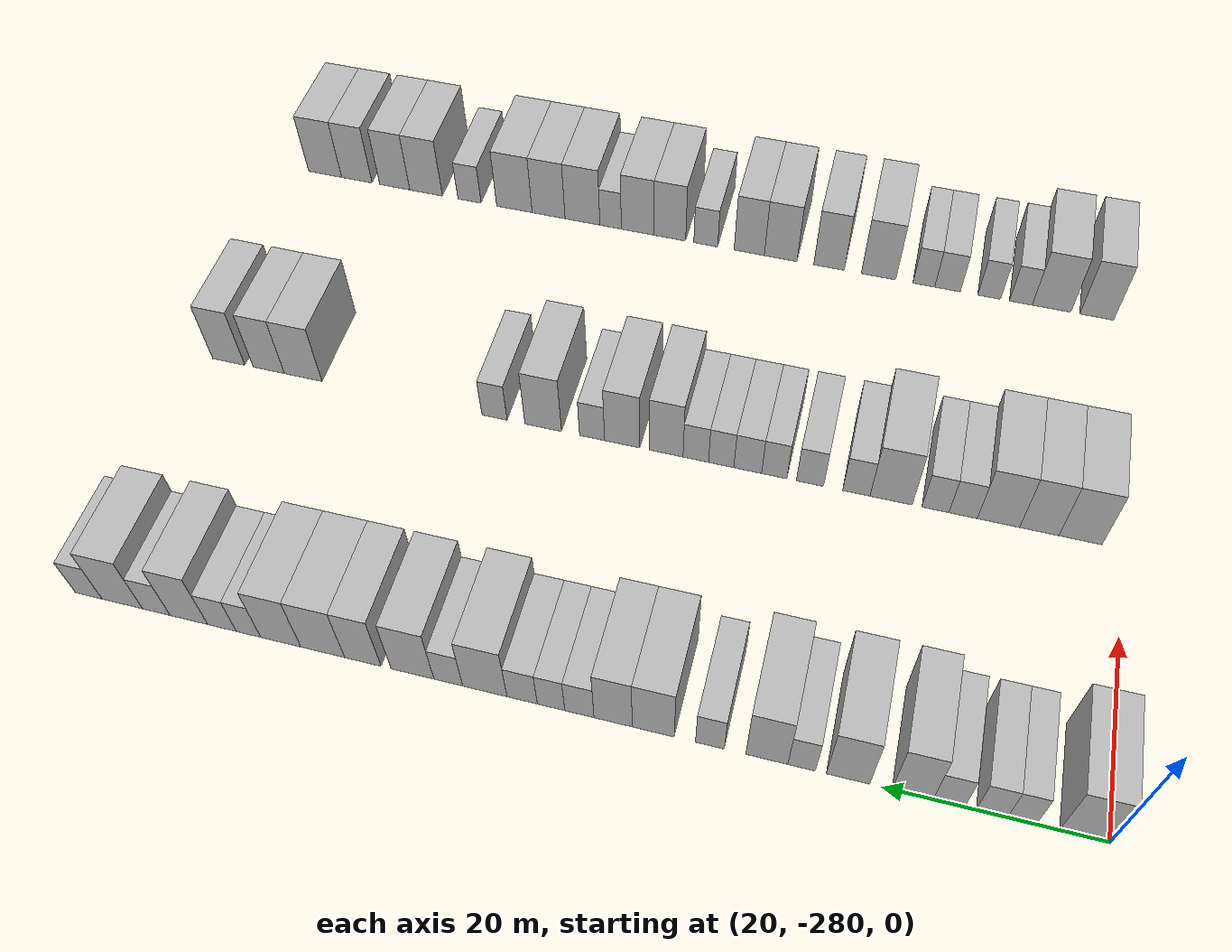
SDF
<sdf version="1.6">
 <world name="default">
  <model name="building_1">
   <static>1</static>
   <pose>25.0000 -277.8149 0 0.000000 0.000000 0.000000</pose>
   <link name="link">
    <pose>0 0 4.50 0 0 0</pose>
    <collision name="collision"><geometry><box><size>10.0000 4.3701 9.0000</size></box></geometry></collision>
    <visual name="visual">
     <cast_shadows>0</cast_shadows>
     <geometry><box><size>10.0000 4.3701 9.0000</size></box></geometry>
     <material>
      <script>
       <uri>model://HANNAS_wall/materials/scripts</uri>
       <uri>model://HANNAS_wall/materials/textures</uri>
       <name>vrc/HANNAS_wall</name>
      </script>
     </material>
    </visual>
   </link>
  </model>
  <model name="building_2">
   <static>1</static>
   <pose>25.0000 -272.3669 0 0.000000 0.000000 0.000000</pose>
   <link name="link">
    <pose>0 0 3.00 0 0 0</pose>
    <collision name="collision"><geometry><box><size>10.0000 2.5261 6.0000</size></box></geometry></collision>
    <visual name="visual">
     <cast_shadows>0</cast_shadows>
     <geometry><box><size>10.0000 2.5261 6.0000</size></box></geometry>
     <material>
      <script>
       <uri>model://HANNAS_wall/materials/scripts</uri>
       <uri>model://HANNAS_wall/materials/textures</uri>
       <name>vrc/HANNAS_wall</name>
      </script>
     </material>
    </visual>
   </link>
  </model>
  <model name="building_3">
   <static>1</static>
   <pose>25.0000 -269.7297 0 0.000000 0.000000 0.000000</pose>
   <link name="link">
    <pose>0 0 3.00 0 0 0</pose>
    <collision name="collision"><geometry><box><size>10.0000 2.7483 6.0000</size></box></geometry></collision>
    <visual name="visual">
     <cast_shadows>0</cast_shadows>
     <geometry><box><size>10.0000 2.7483 6.0000</size></box></geometry>
     <material>
      <script>
       <uri>model://HANNAS_wall/materials/scripts</uri>
       <uri>model://HANNAS_wall/materials/textures</uri>
       <name>vrc/HANNAS_wall</name>
      </script>
     </material>
    </visual>
   </link>
  </model>
  <model name="building_4">
   <static>1</static>
   <pose>25.0000 -265.9560 0 0.000000 0.000000 0.000000</pose>
   <link name="link">
    <pose>0 0 3.00 0 0 0</pose>
    <collision name="collision"><geometry><box><size>10.0000 2.7989 6.0000</size></box></geometry></collision>
    <visual name="visual">
     <cast_shadows>0</cast_shadows>
     <geometry><box><size>10.0000 2.7989 6.0000</size></box></geometry>
     <material>
      <script>
       <uri>model://HANNAS_wall/materials/scripts</uri>
       <uri>model://HANNAS_wall/materials/textures</uri>
       <name>vrc/HANNAS_wall</name>
      </script>
     </material>
    </visual>
   </link>
  </model>
  <model name="building_5">
   <static>1</static>
   <pose>25.0000 -262.7199 0 0.000000 0.000000 0.000000</pose>
   <link name="link">
    <pose>0 0 4.50 0 0 0</pose>
    <collision name="collision"><geometry><box><size>10.0000 3.6734 9.0000</size></box></geometry></collision>
    <visual name="visual">
     <cast_shadows>0</cast_shadows>
     <geometry><box><size>10.0000 3.6734 9.0000</size></box></geometry>
     <material>
      <script>
       <uri>model://HANNAS_wall/materials/scripts</uri>
       <uri>model://HANNAS_wall/materials/textures</uri>
       <name>vrc/HANNAS_wall</name>
      </script>
     </material>
    </visual>
   </link>
  </model>
  <model name="building_6">
   <static>1</static>
   <pose>25.0000 -256.9233 0 0.000000 0.000000 0.000000</pose>
   <link name="link">
    <pose>0 0 4.50 0 0 0</pose>
    <collision name="collision"><geometry><box><size>10.0000 3.9198 9.0000</size></box></geometry></collision>
    <visual name="visual">
     <cast_shadows>0</cast_shadows>
     <geometry><box><size>10.0000 3.9198 9.0000</size></box></geometry>
     <material>
      <script>
       <uri>model://HANNAS_wall/materials/scripts</uri>
       <uri>model://HANNAS_wall/materials/textures</uri>
       <name>vrc/HANNAS_wall</name>
      </script>
     </material>
    </visual>
   </link>
  </model>
  <model name="building_7">
   <static>1</static>
   <pose>25.0000 -252.6992 0 0.000000 0.000000 0.000000</pose>
   <link name="link">
    <pose>0 0 3.00 0 0 0</pose>
    <collision name="collision"><geometry><box><size>10.0000 2.5285 6.0000</size></box></geometry></collision>
    <visual name="visual">
     <cast_shadows>0</cast_shadows>
     <geometry><box><size>10.0000 2.5285 6.0000</size></box></geometry>
     <material>
      <script>
       <uri>model://HANNAS_wall/materials/scripts</uri>
       <uri>model://HANNAS_wall/materials/textures</uri>
       <name>vrc/HANNAS_wall</name>
      </script>
     </material>
    </visual>
   </link>
  </model>
  <model name="building_8">
   <static>1</static>
   <pose>25.0000 -249.5046 0 0.000000 0.000000 0.000000</pose>
   <link name="link">
    <pose>0 0 4.50 0 0 0</pose>
    <collision name="collision"><geometry><box><size>10.0000 3.8606 9.0000</size></box></geometry></collision>
    <visual name="visual">
     <cast_shadows>0</cast_shadows>
     <geometry><box><size>10.0000 3.8606 9.0000</size></box></geometry>
     <material>
      <script>
       <uri>model://HANNAS_wall/materials/scripts</uri>
       <uri>model://HANNAS_wall/materials/textures</uri>
       <name>vrc/HANNAS_wall</name>
      </script>
     </material>
    </visual>
   </link>
  </model>
  <model name="building_9">
   <static>1</static>
   <pose>25.0000 -244.2319 0 0.000000 0.000000 0.000000</pose>
   <link name="link">
    <pose>0 0 3.00 0 0 0</pose>
    <collision name="collision"><geometry><box><size>10.0000 2.6850 6.0000</size></box></geometry></collision>
    <visual name="visual">
     <cast_shadows>0</cast_shadows>
     <geometry><box><size>10.0000 2.6850 6.0000</size></box></geometry>
     <material>
      <script>
       <uri>model://HANNAS_wall/materials/scripts</uri>
       <uri>model://HANNAS_wall/materials/textures</uri>
       <name>vrc/HANNAS_wall</name>
      </script>
     </material>
    </visual>
   </link>
  </model>
  <model name="building_10">
   <static>1</static>
   <pose>25.0000 -238.9068 0 0.000000 0.000000 0.000000</pose>
   <link name="link">
    <pose>0 0 4.50 0 0 0</pose>
    <collision name="collision"><geometry><box><size>10.0000 3.9651 9.0000</size></box></geometry></collision>
    <visual name="visual">
     <cast_shadows>0</cast_shadows>
     <geometry><box><size>10.0000 3.9651 9.0000</size></box></geometry>
     <material>
      <script>
       <uri>model://HANNAS_wall/materials/scripts</uri>
       <uri>model://HANNAS_wall/materials/textures</uri>
       <name>vrc/HANNAS_wall</name>
      </script>
     </material>
    </visual>
   </link>
  </model>
  <model name="building_11">
   <static>1</static>
   <pose>25.0000 -235.1069 0 0.000000 0.000000 0.000000</pose>
   <link name="link">
    <pose>0 0 4.50 0 0 0</pose>
    <collision name="collision"><geometry><box><size>10.0000 3.6346 9.0000</size></box></geometry></collision>
    <visual name="visual">
     <cast_shadows>0</cast_shadows>
     <geometry><box><size>10.0000 3.6346 9.0000</size></box></geometry>
     <material>
      <script>
       <uri>model://HANNAS_wall/materials/scripts</uri>
       <uri>model://HANNAS_wall/materials/textures</uri>
       <name>vrc/HANNAS_wall</name>
      </script>
     </material>
    </visual>
   </link>
  </model>
  <model name="building_12">
   <static>1</static>
   <pose>25.0000 -231.8906 0 0.000000 0.000000 0.000000</pose>
   <link name="link">
    <pose>0 0 3.00 0 0 0</pose>
    <collision name="collision"><geometry><box><size>10.0000 2.7980 6.0000</size></box></geometry></collision>
    <visual name="visual">
     <cast_shadows>0</cast_shadows>
     <geometry><box><size>10.0000 2.7980 6.0000</size></box></geometry>
     <material>
      <script>
       <uri>model://HANNAS_wall/materials/scripts</uri>
       <uri>model://HANNAS_wall/materials/textures</uri>
       <name>vrc/HANNAS_wall</name>
      </script>
     </material>
    </visual>
   </link>
  </model>
  <model name="building_13">
   <static>1</static>
   <pose>25.0000 -229.1642 0 0.000000 0.000000 0.000000</pose>
   <link name="link">
    <pose>0 0 3.00 0 0 0</pose>
    <collision name="collision"><geometry><box><size>10.0000 2.6547 6.0000</size></box></geometry></collision>
    <visual name="visual">
     <cast_shadows>0</cast_shadows>
     <geometry><box><size>10.0000 2.6547 6.0000</size></box></geometry>
     <material>
      <script>
       <uri>model://HANNAS_wall/materials/scripts</uri>
       <uri>model://HANNAS_wall/materials/textures</uri>
       <name>vrc/HANNAS_wall</name>
      </script>
     </material>
    </visual>
   </link>
  </model>
  <model name="building_14">
   <static>1</static>
   <pose>25.0000 -226.3627 0 0.000000 0.000000 0.000000</pose>
   <link name="link">
    <pose>0 0 3.00 0 0 0</pose>
    <collision name="collision"><geometry><box><size>10.0000 2.9484 6.0000</size></box></geometry></collision>
    <visual name="visual">
     <cast_shadows>0</cast_shadows>
     <geometry><box><size>10.0000 2.9484 6.0000</size></box></geometry>
     <material>
      <script>
       <uri>model://HANNAS_wall/materials/scripts</uri>
       <uri>model://HANNAS_wall/materials/textures</uri>
       <name>vrc/HANNAS_wall</name>
      </script>
     </material>
    </visual>
   </link>
  </model>
  <model name="building_15">
   <static>1</static>
   <pose>25.0000 -222.7146 0 0.000000 0.000000 0.000000</pose>
   <link name="link">
    <pose>0 0 4.50 0 0 0</pose>
    <collision name="collision"><geometry><box><size>10.0000 4.3479 9.0000</size></box></geometry></collision>
    <visual name="visual">
     <cast_shadows>0</cast_shadows>
     <geometry><box><size>10.0000 4.3479 9.0000</size></box></geometry>
     <material>
      <script>
       <uri>model://HANNAS_wall/materials/scripts</uri>
       <uri>model://HANNAS_wall/materials/textures</uri>
       <name>vrc/HANNAS_wall</name>
      </script>
     </material>
    </visual>
   </link>
  </model>
  <model name="building_16">
   <static>1</static>
   <pose>25.0000 -219.1137 0 0.000000 0.000000 0.000000</pose>
   <link name="link">
    <pose>0 0 3.00 0 0 0</pose>
    <collision name="collision"><geometry><box><size>10.0000 2.8539 6.0000</size></box></geometry></collision>
    <visual name="visual">
     <cast_shadows>0</cast_shadows>
     <geometry><box><size>10.0000 2.8539 6.0000</size></box></geometry>
     <material>
      <script>
       <uri>model://HANNAS_wall/materials/scripts</uri>
       <uri>model://HANNAS_wall/materials/textures</uri>
       <name>vrc/HANNAS_wall</name>
      </script>
     </material>
    </visual>
   </link>
  </model>
  <model name="building_17">
   <static>1</static>
   <pose>25.0000 -215.5499 0 0.000000 0.000000 0.000000</pose>
   <link name="link">
    <pose>0 0 4.50 0 0 0</pose>
    <collision name="collision"><geometry><box><size>10.0000 4.2735 9.0000</size></box></geometry></collision>
    <visual name="visual">
     <cast_shadows>0</cast_shadows>
     <geometry><box><size>10.0000 4.2735 9.0000</size></box></geometry>
     <material>
      <script>
       <uri>model://HANNAS_wall/materials/scripts</uri>
       <uri>model://HANNAS_wall/materials/textures</uri>
       <name>vrc/HANNAS_wall</name>
      </script>
     </material>
    </visual>
   </link>
  </model>
  <model name="building_18">
   <static>1</static>
   <pose>25.0000 -210.5825 0 0.000000 0.000000 0.000000</pose>
   <link name="link">
    <pose>0 0 4.50 0 0 0</pose>
    <collision name="collision"><geometry><box><size>10.0000 3.6612 9.0000</size></box></geometry></collision>
    <visual name="visual">
     <cast_shadows>0</cast_shadows>
     <geometry><box><size>10.0000 3.6612 9.0000</size></box></geometry>
     <material>
      <script>
       <uri>model://HANNAS_wall/materials/scripts</uri>
       <uri>model://HANNAS_wall/materials/textures</uri>
       <name>vrc/HANNAS_wall</name>
      </script>
     </material>
    </visual>
   </link>
  </model>
  <model name="building_19">
   <static>1</static>
   <pose>25.0000 -206.5141 0 0.000000 0.000000 0.000000</pose>
   <link name="link">
    <pose>0 0 4.50 0 0 0</pose>
    <collision name="collision"><geometry><box><size>10.0000 4.4757 9.0000</size></box></geometry></collision>
    <visual name="visual">
     <cast_shadows>0</cast_shadows>
     <geometry><box><size>10.0000 4.4757 9.0000</size></box></geometry>
     <material>
      <script>
       <uri>model://HANNAS_wall/materials/scripts</uri>
       <uri>model://HANNAS_wall/materials/textures</uri>
       <name>vrc/HANNAS_wall</name>
      </script>
     </material>
    </visual>
   </link>
  </model>
  <model name="building_20">
   <static>1</static>
   <pose>25.0000 -202.2055 0 0.000000 0.000000 0.000000</pose>
   <link name="link">
    <pose>0 0 4.50 0 0 0</pose>
    <collision name="collision"><geometry><box><size>10.0000 4.1415 9.0000</size></box></geometry></collision>
    <visual name="visual">
     <cast_shadows>0</cast_shadows>
     <geometry><box><size>10.0000 4.1415 9.0000</size></box></geometry>
     <material>
      <script>
       <uri>model://HANNAS_wall/materials/scripts</uri>
       <uri>model://HANNAS_wall/materials/textures</uri>
       <name>vrc/HANNAS_wall</name>
      </script>
     </material>
    </visual>
   </link>
  </model>
  <model name="building_21">
   <static>1</static>
   <pose>25.0000 -198.8744 0 0.000000 0.000000 0.000000</pose>
   <link name="link">
    <pose>0 0 3.00 0 0 0</pose>
    <collision name="collision"><geometry><box><size>10.0000 2.5206 6.0000</size></box></geometry></collision>
    <visual name="visual">
     <cast_shadows>0</cast_shadows>
     <geometry><box><size>10.0000 2.5206 6.0000</size></box></geometry>
     <material>
      <script>
       <uri>model://HANNAS_wall/materials/scripts</uri>
       <uri>model://HANNAS_wall/materials/textures</uri>
       <name>vrc/HANNAS_wall</name>
      </script>
     </material>
    </visual>
   </link>
  </model>
  <model name="building_22">
   <static>1</static>
   <pose>25.0000 -196.1217 0 0.000000 0.000000 0.000000</pose>
   <link name="link">
    <pose>0 0 3.00 0 0 0</pose>
    <collision name="collision"><geometry><box><size>10.0000 2.9849 6.0000</size></box></geometry></collision>
    <visual name="visual">
     <cast_shadows>0</cast_shadows>
     <geometry><box><size>10.0000 2.9849 6.0000</size></box></geometry>
     <material>
      <script>
       <uri>model://HANNAS_wall/materials/scripts</uri>
       <uri>model://HANNAS_wall/materials/textures</uri>
       <name>vrc/HANNAS_wall</name>
      </script>
     </material>
    </visual>
   </link>
  </model>
  <model name="building_23">
   <static>1</static>
   <pose>25.0000 -192.6472 0 0.000000 0.000000 0.000000</pose>
   <link name="link">
    <pose>0 0 4.50 0 0 0</pose>
    <collision name="collision"><geometry><box><size>10.0000 3.9641 9.0000</size></box></geometry></collision>
    <visual name="visual">
     <cast_shadows>0</cast_shadows>
     <geometry><box><size>10.0000 3.9641 9.0000</size></box></geometry>
     <material>
      <script>
       <uri>model://HANNAS_wall/materials/scripts</uri>
       <uri>model://HANNAS_wall/materials/textures</uri>
       <name>vrc/HANNAS_wall</name>
      </script>
     </material>
    </visual>
   </link>
  </model>
  <model name="building_24">
   <static>1</static>
   <pose>25.0000 -189.2160 0 0.000000 0.000000 0.000000</pose>
   <link name="link">
    <pose>0 0 3.00 0 0 0</pose>
    <collision name="collision"><geometry><box><size>10.0000 2.8983 6.0000</size></box></geometry></collision>
    <visual name="visual">
     <cast_shadows>0</cast_shadows>
     <geometry><box><size>10.0000 2.8983 6.0000</size></box></geometry>
     <material>
      <script>
       <uri>model://HANNAS_wall/materials/scripts</uri>
       <uri>model://HANNAS_wall/materials/textures</uri>
       <name>vrc/HANNAS_wall</name>
      </script>
     </material>
    </visual>
   </link>
  </model>
  <model name="building_25">
   <static>1</static>
   <pose>25.0000 -185.5957 0 0.000000 0.000000 0.000000</pose>
   <link name="link">
    <pose>0 0 4.50 0 0 0</pose>
    <collision name="collision"><geometry><box><size>10.0000 4.3424 9.0000</size></box></geometry></collision>
    <visual name="visual">
     <cast_shadows>0</cast_shadows>
     <geometry><box><size>10.0000 4.3424 9.0000</size></box></geometry>
     <material>
      <script>
       <uri>model://HANNAS_wall/materials/scripts</uri>
       <uri>model://HANNAS_wall/materials/textures</uri>
       <name>vrc/HANNAS_wall</name>
      </script>
     </material>
    </visual>
   </link>
  </model>
  <model name="building_26">
   <static>1</static>
   <pose>25.0000 -181.9877 0 0.000000 0.000000 0.000000</pose>
   <link name="link">
    <pose>0 0 3.00 0 0 0</pose>
    <collision name="collision"><geometry><box><size>10.0000 2.8734 6.0000</size></box></geometry></collision>
    <visual name="visual">
     <cast_shadows>0</cast_shadows>
     <geometry><box><size>10.0000 2.8734 6.0000</size></box></geometry>
     <material>
      <script>
       <uri>model://HANNAS_wall/materials/scripts</uri>
       <uri>model://HANNAS_wall/materials/textures</uri>
       <name>vrc/HANNAS_wall</name>
      </script>
     </material>
    </visual>
   </link>
  </model>
  <model name="building_142">
   <static>1</static>
   <pose>55.0000 -275.8555 0 0.000000 0.000000 0.000000</pose>
   <link name="link">
    <pose>0 0 4.50 0 0 0</pose>
    <collision name="collision"><geometry><box><size>10.0000 4.2890 9.0000</size></box></geometry></collision>
    <visual name="visual">
     <cast_shadows>0</cast_shadows>
     <geometry><box><size>10.0000 4.2890 9.0000</size></box></geometry>
     <material>
      <script>
       <uri>model://HANNAS_wall/materials/scripts</uri>
       <uri>model://HANNAS_wall/materials/textures</uri>
       <name>vrc/HANNAS_wall</name>
      </script>
     </material>
    </visual>
   </link>
  </model>
  <model name="building_143">
   <static>1</static>
   <pose>55.0000 -271.7507 0 0.000000 0.000000 0.000000</pose>
   <link name="link">
    <pose>0 0 4.50 0 0 0</pose>
    <collision name="collision"><geometry><box><size>10.0000 3.9205 9.0000</size></box></geometry></collision>
    <visual name="visual">
     <cast_shadows>0</cast_shadows>
     <geometry><box><size>10.0000 3.9205 9.0000</size></box></geometry>
     <material>
      <script>
       <uri>model://HANNAS_wall/materials/scripts</uri>
       <uri>model://HANNAS_wall/materials/textures</uri>
       <name>vrc/HANNAS_wall</name>
      </script>
     </material>
    </visual>
   </link>
  </model>
  <model name="building_144">
   <static>1</static>
   <pose>55.0000 -267.6643 0 0.000000 0.000000 0.000000</pose>
   <link name="link">
    <pose>0 0 4.50 0 0 0</pose>
    <collision name="collision"><geometry><box><size>10.0000 4.2523 9.0000</size></box></geometry></collision>
    <visual name="visual">
     <cast_shadows>0</cast_shadows>
     <geometry><box><size>10.0000 4.2523 9.0000</size></box></geometry>
     <material>
      <script>
       <uri>model://HANNAS_wall/materials/scripts</uri>
       <uri>model://HANNAS_wall/materials/textures</uri>
       <name>vrc/HANNAS_wall</name>
      </script>
     </material>
    </visual>
   </link>
  </model>
  <model name="building_145">
   <static>1</static>
   <pose>55.0000 -264.0943 0 0.000000 0.000000 0.000000</pose>
   <link name="link">
    <pose>0 0 3.00 0 0 0</pose>
    <collision name="collision"><geometry><box><size>10.0000 2.8878 6.0000</size></box></geometry></collision>
    <visual name="visual">
     <cast_shadows>0</cast_shadows>
     <geometry><box><size>10.0000 2.8878 6.0000</size></box></geometry>
     <material>
      <script>
       <uri>model://HANNAS_wall/materials/scripts</uri>
       <uri>model://HANNAS_wall/materials/textures</uri>
       <name>vrc/HANNAS_wall</name>
      </script>
     </material>
    </visual>
   </link>
  </model>
  <model name="building_146">
   <static>1</static>
   <pose>55.0000 -261.2733 0 0.000000 0.000000 0.000000</pose>
   <link name="link">
    <pose>0 0 3.00 0 0 0</pose>
    <collision name="collision"><geometry><box><size>10.0000 2.7542 6.0000</size></box></geometry></collision>
    <visual name="visual">
     <cast_shadows>0</cast_shadows>
     <geometry><box><size>10.0000 2.7542 6.0000</size></box></geometry>
     <material>
      <script>
       <uri>model://HANNAS_wall/materials/scripts</uri>
       <uri>model://HANNAS_wall/materials/textures</uri>
       <name>vrc/HANNAS_wall</name>
      </script>
     </material>
    </visual>
   </link>
  </model>
  <model name="building_147">
   <static>1</static>
   <pose>55.0000 -256.7158 0 0.000000 0.000000 0.000000</pose>
   <link name="link">
    <pose>0 0 4.50 0 0 0</pose>
    <collision name="collision"><geometry><box><size>10.0000 4.3606 9.0000</size></box></geometry></collision>
    <visual name="visual">
     <cast_shadows>0</cast_shadows>
     <geometry><box><size>10.0000 4.3606 9.0000</size></box></geometry>
     <material>
      <script>
       <uri>model://HANNAS_wall/materials/scripts</uri>
       <uri>model://HANNAS_wall/materials/textures</uri>
       <name>vrc/HANNAS_wall</name>
      </script>
     </material>
    </visual>
   </link>
  </model>
  <model name="building_148">
   <static>1</static>
   <pose>55.0000 -253.1161 0 0.000000 0.000000 0.000000</pose>
   <link name="link">
    <pose>0 0 3.00 0 0 0</pose>
    <collision name="collision"><geometry><box><size>10.0000 2.8389 6.0000</size></box></geometry></collision>
    <visual name="visual">
     <cast_shadows>0</cast_shadows>
     <geometry><box><size>10.0000 2.8389 6.0000</size></box></geometry>
     <material>
      <script>
       <uri>model://HANNAS_wall/materials/scripts</uri>
       <uri>model://HANNAS_wall/materials/textures</uri>
       <name>vrc/HANNAS_wall</name>
      </script>
     </material>
    </visual>
   </link>
  </model>
  <model name="building_149">
   <static>1</static>
   <pose>55.0000 -248.2692 0 0.000000 0.000000 0.000000</pose>
   <link name="link">
    <pose>0 0 3.00 0 0 0</pose>
    <collision name="collision"><geometry><box><size>10.0000 2.8548 6.0000</size></box></geometry></collision>
    <visual name="visual">
     <cast_shadows>0</cast_shadows>
     <geometry><box><size>10.0000 2.8548 6.0000</size></box></geometry>
     <material>
      <script>
       <uri>model://HANNAS_wall/materials/scripts</uri>
       <uri>model://HANNAS_wall/materials/textures</uri>
       <name>vrc/HANNAS_wall</name>
      </script>
     </material>
    </visual>
   </link>
  </model>
  <model name="building_150">
   <static>1</static>
   <pose>55.0000 -244.5018 0 0.000000 0.000000 0.000000</pose>
   <link name="link">
    <pose>0 0 3.00 0 0 0</pose>
    <collision name="collision"><geometry><box><size>10.0000 2.6801 6.0000</size></box></geometry></collision>
    <visual name="visual">
     <cast_shadows>0</cast_shadows>
     <geometry><box><size>10.0000 2.6801 6.0000</size></box></geometry>
     <material>
      <script>
       <uri>model://HANNAS_wall/materials/scripts</uri>
       <uri>model://HANNAS_wall/materials/textures</uri>
       <name>vrc/HANNAS_wall</name>
      </script>
     </material>
    </visual>
   </link>
  </model>
  <model name="building_151">
   <static>1</static>
   <pose>55.0000 -241.6820 0 0.000000 0.000000 0.000000</pose>
   <link name="link">
    <pose>0 0 3.00 0 0 0</pose>
    <collision name="collision"><geometry><box><size>10.0000 2.9594 6.0000</size></box></geometry></collision>
    <visual name="visual">
     <cast_shadows>0</cast_shadows>
     <geometry><box><size>10.0000 2.9594 6.0000</size></box></geometry>
     <material>
      <script>
       <uri>model://HANNAS_wall/materials/scripts</uri>
       <uri>model://HANNAS_wall/materials/textures</uri>
       <name>vrc/HANNAS_wall</name>
      </script>
     </material>
    </visual>
   </link>
  </model>
  <model name="building_152">
   <static>1</static>
   <pose>55.0000 -238.8451 0 0.000000 0.000000 0.000000</pose>
   <link name="link">
    <pose>0 0 3.00 0 0 0</pose>
    <collision name="collision"><geometry><box><size>10.0000 2.7145 6.0000</size></box></geometry></collision>
    <visual name="visual">
     <cast_shadows>0</cast_shadows>
     <geometry><box><size>10.0000 2.7145 6.0000</size></box></geometry>
     <material>
      <script>
       <uri>model://HANNAS_wall/materials/scripts</uri>
       <uri>model://HANNAS_wall/materials/textures</uri>
       <name>vrc/HANNAS_wall</name>
      </script>
     </material>
    </visual>
   </link>
  </model>
  <model name="building_153">
   <static>1</static>
   <pose>55.0000 -236.1168 0 0.000000 0.000000 0.000000</pose>
   <link name="link">
    <pose>0 0 3.00 0 0 0</pose>
    <collision name="collision"><geometry><box><size>10.0000 2.7419 6.0000</size></box></geometry></collision>
    <visual name="visual">
     <cast_shadows>0</cast_shadows>
     <geometry><box><size>10.0000 2.7419 6.0000</size></box></geometry>
     <material>
      <script>
       <uri>model://HANNAS_wall/materials/scripts</uri>
       <uri>model://HANNAS_wall/materials/textures</uri>
       <name>vrc/HANNAS_wall</name>
      </script>
     </material>
    </visual>
   </link>
  </model>
  <model name="building_154">
   <static>1</static>
   <pose>55.0000 -232.9035 0 0.000000 0.000000 0.000000</pose>
   <link name="link">
    <pose>0 0 4.50 0 0 0</pose>
    <collision name="collision"><geometry><box><size>10.0000 3.6847 9.0000</size></box></geometry></collision>
    <visual name="visual">
     <cast_shadows>0</cast_shadows>
     <geometry><box><size>10.0000 3.6847 9.0000</size></box></geometry>
     <material>
      <script>
       <uri>model://HANNAS_wall/materials/scripts</uri>
       <uri>model://HANNAS_wall/materials/textures</uri>
       <name>vrc/HANNAS_wall</name>
      </script>
     </material>
    </visual>
   </link>
  </model>
  <model name="building_155">
   <static>1</static>
   <pose>55.0000 -228.1320 0 0.000000 0.000000 0.000000</pose>
   <link name="link">
    <pose>0 0 4.50 0 0 0</pose>
    <collision name="collision"><geometry><box><size>10.0000 3.8582 9.0000</size></box></geometry></collision>
    <visual name="visual">
     <cast_shadows>0</cast_shadows>
     <geometry><box><size>10.0000 3.8582 9.0000</size></box></geometry>
     <material>
      <script>
       <uri>model://HANNAS_wall/materials/scripts</uri>
       <uri>model://HANNAS_wall/materials/textures</uri>
       <name>vrc/HANNAS_wall</name>
      </script>
     </material>
    </visual>
   </link>
  </model>
  <model name="building_156">
   <static>1</static>
   <pose>55.0000 -224.8236 0 0.000000 0.000000 0.000000</pose>
   <link name="link">
    <pose>0 0 3.00 0 0 0</pose>
    <collision name="collision"><geometry><box><size>10.0000 2.7588 6.0000</size></box></geometry></collision>
    <visual name="visual">
     <cast_shadows>0</cast_shadows>
     <geometry><box><size>10.0000 2.7588 6.0000</size></box></geometry>
     <material>
      <script>
       <uri>model://HANNAS_wall/materials/scripts</uri>
       <uri>model://HANNAS_wall/materials/textures</uri>
       <name>vrc/HANNAS_wall</name>
      </script>
     </material>
    </visual>
   </link>
  </model>
  <model name="building_157">
   <static>1</static>
   <pose>55.0000 -219.4064 0 0.000000 0.000000 0.000000</pose>
   <link name="link">
    <pose>0 0 4.50 0 0 0</pose>
    <collision name="collision"><geometry><box><size>10.0000 4.0755 9.0000</size></box></geometry></collision>
    <visual name="visual">
     <cast_shadows>0</cast_shadows>
     <geometry><box><size>10.0000 4.0755 9.0000</size></box></geometry>
     <material>
      <script>
       <uri>model://HANNAS_wall/materials/scripts</uri>
       <uri>model://HANNAS_wall/materials/textures</uri>
       <name>vrc/HANNAS_wall</name>
      </script>
     </material>
    </visual>
   </link>
  </model>
  <model name="building_158">
   <static>1</static>
   <pose>55.0000 -213.9542 0 0.000000 0.000000 0.000000</pose>
   <link name="link">
    <pose>0 0 3.00 0 0 0</pose>
    <collision name="collision"><geometry><box><size>10.0000 2.8288 6.0000</size></box></geometry></collision>
    <visual name="visual">
     <cast_shadows>0</cast_shadows>
     <geometry><box><size>10.0000 2.8288 6.0000</size></box></geometry>
     <material>
      <script>
       <uri>model://HANNAS_wall/materials/scripts</uri>
       <uri>model://HANNAS_wall/materials/textures</uri>
       <name>vrc/HANNAS_wall</name>
      </script>
     </material>
    </visual>
   </link>
  </model>
  <model name="building_159">
   <static>1</static>
   <pose>55.0000 -191.8793 0 0.000000 0.000000 0.000000</pose>
   <link name="link">
    <pose>0 0 4.50 0 0 0</pose>
    <collision name="collision"><geometry><box><size>10.0000 4.4403 9.0000</size></box></geometry></collision>
    <visual name="visual">
     <cast_shadows>0</cast_shadows>
     <geometry><box><size>10.0000 4.4403 9.0000</size></box></geometry>
     <material>
      <script>
       <uri>model://HANNAS_wall/materials/scripts</uri>
       <uri>model://HANNAS_wall/materials/textures</uri>
       <name>vrc/HANNAS_wall</name>
      </script>
     </material>
    </visual>
   </link>
  </model>
  <model name="building_160">
   <static>1</static>
   <pose>55.0000 -187.8102 0 0.000000 0.000000 0.000000</pose>
   <link name="link">
    <pose>0 0 4.50 0 0 0</pose>
    <collision name="collision"><geometry><box><size>10.0000 3.6980 9.0000</size></box></geometry></collision>
    <visual name="visual">
     <cast_shadows>0</cast_shadows>
     <geometry><box><size>10.0000 3.6980 9.0000</size></box></geometry>
     <material>
      <script>
       <uri>model://HANNAS_wall/materials/scripts</uri>
       <uri>model://HANNAS_wall/materials/textures</uri>
       <name>vrc/HANNAS_wall</name>
      </script>
     </material>
    </visual>
   </link>
  </model>
  <model name="building_161">
   <static>1</static>
   <pose>55.0000 -183.0287 0 0.000000 0.000000 0.000000</pose>
   <link name="link">
    <pose>0 0 4.50 0 0 0</pose>
    <collision name="collision"><geometry><box><size>10.0000 3.8650 9.0000</size></box></geometry></collision>
    <visual name="visual">
     <cast_shadows>0</cast_shadows>
     <geometry><box><size>10.0000 3.8650 9.0000</size></box></geometry>
     <material>
      <script>
       <uri>model://HANNAS_wall/materials/scripts</uri>
       <uri>model://HANNAS_wall/materials/textures</uri>
       <name>vrc/HANNAS_wall</name>
      </script>
     </material>
    </visual>
   </link>
  </model>
  <model name="building_267">
   <static>1</static>
   <pose>85.0000 -276.1132 0 0.000000 0.000000 0.000000</pose>
   <link name="link">
    <pose>0 0 4.50 0 0 0</pose>
    <collision name="collision"><geometry><box><size>10.0000 3.7735 9.0000</size></box></geometry></collision>
    <visual name="visual">
     <cast_shadows>0</cast_shadows>
     <geometry><box><size>10.0000 3.7735 9.0000</size></box></geometry>
     <material>
      <script>
       <uri>model://HANNAS_wall/materials/scripts</uri>
       <uri>model://HANNAS_wall/materials/textures</uri>
       <name>vrc/HANNAS_wall</name>
      </script>
     </material>
    </visual>
   </link>
  </model>
  <model name="building_268">
   <static>1</static>
   <pose>85.0000 -271.0410 0 0.000000 0.000000 0.000000</pose>
   <link name="link">
    <pose>0 0 4.50 0 0 0</pose>
    <collision name="collision"><geometry><box><size>10.0000 4.3709 9.0000</size></box></geometry></collision>
    <visual name="visual">
     <cast_shadows>0</cast_shadows>
     <geometry><box><size>10.0000 4.3709 9.0000</size></box></geometry>
     <material>
      <script>
       <uri>model://HANNAS_wall/materials/scripts</uri>
       <uri>model://HANNAS_wall/materials/textures</uri>
       <name>vrc/HANNAS_wall</name>
      </script>
     </material>
    </visual>
   </link>
  </model>
  <model name="building_269">
   <static>1</static>
   <pose>85.0000 -267.5695 0 0.000000 0.000000 0.000000</pose>
   <link name="link">
    <pose>0 0 3.00 0 0 0</pose>
    <collision name="collision"><geometry><box><size>10.0000 2.5722 6.0000</size></box></geometry></collision>
    <visual name="visual">
     <cast_shadows>0</cast_shadows>
     <geometry><box><size>10.0000 2.5722 6.0000</size></box></geometry>
     <material>
      <script>
       <uri>model://HANNAS_wall/materials/scripts</uri>
       <uri>model://HANNAS_wall/materials/textures</uri>
       <name>vrc/HANNAS_wall</name>
      </script>
     </material>
    </visual>
   </link>
  </model>
  <model name="building_270">
   <static>1</static>
   <pose>85.0000 -263.9731 0 0.000000 0.000000 0.000000</pose>
   <link name="link">
    <pose>0 0 3.00 0 0 0</pose>
    <collision name="collision"><geometry><box><size>10.0000 2.6206 6.0000</size></box></geometry></collision>
    <visual name="visual">
     <cast_shadows>0</cast_shadows>
     <geometry><box><size>10.0000 2.6206 6.0000</size></box></geometry>
     <material>
      <script>
       <uri>model://HANNAS_wall/materials/scripts</uri>
       <uri>model://HANNAS_wall/materials/textures</uri>
       <name>vrc/HANNAS_wall</name>
      </script>
     </material>
    </visual>
   </link>
  </model>
  <model name="building_271">
   <static>1</static>
   <pose>85.0000 -259.1819 0 0.000000 0.000000 0.000000</pose>
   <link name="link">
    <pose>0 0 3.00 0 0 0</pose>
    <collision name="collision"><geometry><box><size>10.0000 2.9618 6.0000</size></box></geometry></collision>
    <visual name="visual">
     <cast_shadows>0</cast_shadows>
     <geometry><box><size>10.0000 2.9618 6.0000</size></box></geometry>
     <material>
      <script>
       <uri>model://HANNAS_wall/materials/scripts</uri>
       <uri>model://HANNAS_wall/materials/textures</uri>
       <name>vrc/HANNAS_wall</name>
      </script>
     </material>
    </visual>
   </link>
  </model>
  <model name="building_272">
   <static>1</static>
   <pose>85.0000 -256.4388 0 0.000000 0.000000 0.000000</pose>
   <link name="link">
    <pose>0 0 3.00 0 0 0</pose>
    <collision name="collision"><geometry><box><size>10.0000 2.5243 6.0000</size></box></geometry></collision>
    <visual name="visual">
     <cast_shadows>0</cast_shadows>
     <geometry><box><size>10.0000 2.5243 6.0000</size></box></geometry>
     <material>
      <script>
       <uri>model://HANNAS_wall/materials/scripts</uri>
       <uri>model://HANNAS_wall/materials/textures</uri>
       <name>vrc/HANNAS_wall</name>
      </script>
     </material>
    </visual>
   </link>
  </model>
  <model name="building_273">
   <static>1</static>
   <pose>85.0000 -251.1570 0 0.000000 0.000000 0.000000</pose>
   <link name="link">
    <pose>0 0 4.50 0 0 0</pose>
    <collision name="collision"><geometry><box><size>10.0000 4.0393 9.0000</size></box></geometry></collision>
    <visual name="visual">
     <cast_shadows>0</cast_shadows>
     <geometry><box><size>10.0000 4.0393 9.0000</size></box></geometry>
     <material>
      <script>
       <uri>model://HANNAS_wall/materials/scripts</uri>
       <uri>model://HANNAS_wall/materials/textures</uri>
       <name>vrc/HANNAS_wall</name>
      </script>
     </material>
    </visual>
   </link>
  </model>
  <model name="building_274">
   <static>1</static>
   <pose>85.0000 -245.3325 0 0.000000 0.000000 0.000000</pose>
   <link name="link">
    <pose>0 0 4.50 0 0 0</pose>
    <collision name="collision"><geometry><box><size>10.0000 3.6097 9.0000</size></box></geometry></collision>
    <visual name="visual">
     <cast_shadows>0</cast_shadows>
     <geometry><box><size>10.0000 3.6097 9.0000</size></box></geometry>
     <material>
      <script>
       <uri>model://HANNAS_wall/materials/scripts</uri>
       <uri>model://HANNAS_wall/materials/textures</uri>
       <name>vrc/HANNAS_wall</name>
      </script>
     </material>
    </visual>
   </link>
  </model>
  <model name="building_275">
   <static>1</static>
   <pose>85.0000 -239.5726 0 0.000000 0.000000 0.000000</pose>
   <link name="link">
    <pose>0 0 4.50 0 0 0</pose>
    <collision name="collision"><geometry><box><size>10.0000 3.9102 9.0000</size></box></geometry></collision>
    <visual name="visual">
     <cast_shadows>0</cast_shadows>
     <geometry><box><size>10.0000 3.9102 9.0000</size></box></geometry>
     <material>
      <script>
       <uri>model://HANNAS_wall/materials/scripts</uri>
       <uri>model://HANNAS_wall/materials/textures</uri>
       <name>vrc/HANNAS_wall</name>
      </script>
     </material>
    </visual>
   </link>
  </model>
  <model name="building_276">
   <static>1</static>
   <pose>85.0000 -235.8010 0 0.000000 0.000000 0.000000</pose>
   <link name="link">
    <pose>0 0 4.50 0 0 0</pose>
    <collision name="collision"><geometry><box><size>10.0000 3.6330 9.0000</size></box></geometry></collision>
    <visual name="visual">
     <cast_shadows>0</cast_shadows>
     <geometry><box><size>10.0000 3.6330 9.0000</size></box></geometry>
     <material>
      <script>
       <uri>model://HANNAS_wall/materials/scripts</uri>
       <uri>model://HANNAS_wall/materials/textures</uri>
       <name>vrc/HANNAS_wall</name>
      </script>
     </material>
    </visual>
   </link>
  </model>
  <model name="building_277">
   <static>1</static>
   <pose>85.0000 -230.5352 0 0.000000 0.000000 0.000000</pose>
   <link name="link">
    <pose>0 0 3.00 0 0 0</pose>
    <collision name="collision"><geometry><box><size>10.0000 2.8987 6.0000</size></box></geometry></collision>
    <visual name="visual">
     <cast_shadows>0</cast_shadows>
     <geometry><box><size>10.0000 2.8987 6.0000</size></box></geometry>
     <material>
      <script>
       <uri>model://HANNAS_wall/materials/scripts</uri>
       <uri>model://HANNAS_wall/materials/textures</uri>
       <name>vrc/HANNAS_wall</name>
      </script>
     </material>
    </visual>
   </link>
  </model>
  <model name="building_278">
   <static>1</static>
   <pose>85.0000 -226.1339 0 0.000000 0.000000 0.000000</pose>
   <link name="link">
    <pose>0 0 4.50 0 0 0</pose>
    <collision name="collision"><geometry><box><size>10.0000 3.9038 9.0000</size></box></geometry></collision>
    <visual name="visual">
     <cast_shadows>0</cast_shadows>
     <geometry><box><size>10.0000 3.9038 9.0000</size></box></geometry>
     <material>
      <script>
       <uri>model://HANNAS_wall/materials/scripts</uri>
       <uri>model://HANNAS_wall/materials/textures</uri>
       <name>vrc/HANNAS_wall</name>
      </script>
     </material>
    </visual>
   </link>
  </model>
  <model name="building_279">
   <static>1</static>
   <pose>85.0000 -222.1785 0 0.000000 0.000000 0.000000</pose>
   <link name="link">
    <pose>0 0 4.50 0 0 0</pose>
    <collision name="collision"><geometry><box><size>10.0000 4.0071 9.0000</size></box></geometry></collision>
    <visual name="visual">
     <cast_shadows>0</cast_shadows>
     <geometry><box><size>10.0000 4.0071 9.0000</size></box></geometry>
     <material>
      <script>
       <uri>model://HANNAS_wall/materials/scripts</uri>
       <uri>model://HANNAS_wall/materials/textures</uri>
       <name>vrc/HANNAS_wall</name>
      </script>
     </material>
    </visual>
   </link>
  </model>
  <model name="building_280">
   <static>1</static>
   <pose>85.0000 -218.8409 0 0.000000 0.000000 0.000000</pose>
   <link name="link">
    <pose>0 0 3.00 0 0 0</pose>
    <collision name="collision"><geometry><box><size>10.0000 2.6681 6.0000</size></box></geometry></collision>
    <visual name="visual">
     <cast_shadows>0</cast_shadows>
     <geometry><box><size>10.0000 2.6681 6.0000</size></box></geometry>
     <material>
      <script>
       <uri>model://HANNAS_wall/materials/scripts</uri>
       <uri>model://HANNAS_wall/materials/textures</uri>
       <name>vrc/HANNAS_wall</name>
      </script>
     </material>
    </visual>
   </link>
  </model>
  <model name="building_281">
   <static>1</static>
   <pose>85.0000 -215.3329 0 0.000000 0.000000 0.000000</pose>
   <link name="link">
    <pose>0 0 4.50 0 0 0</pose>
    <collision name="collision"><geometry><box><size>10.0000 4.3479 9.0000</size></box></geometry></collision>
    <visual name="visual">
     <cast_shadows>0</cast_shadows>
     <geometry><box><size>10.0000 4.3479 9.0000</size></box></geometry>
     <material>
      <script>
       <uri>model://HANNAS_wall/materials/scripts</uri>
       <uri>model://HANNAS_wall/materials/textures</uri>
       <name>vrc/HANNAS_wall</name>
      </script>
     </material>
    </visual>
   </link>
  </model>
  <model name="building_282">
   <static>1</static>
   <pose>85.0000 -211.0821 0 0.000000 0.000000 0.000000</pose>
   <link name="link">
    <pose>0 0 4.50 0 0 0</pose>
    <collision name="collision"><geometry><box><size>10.0000 4.1537 9.0000</size></box></geometry></collision>
    <visual name="visual">
     <cast_shadows>0</cast_shadows>
     <geometry><box><size>10.0000 4.1537 9.0000</size></box></geometry>
     <material>
      <script>
       <uri>model://HANNAS_wall/materials/scripts</uri>
       <uri>model://HANNAS_wall/materials/textures</uri>
       <name>vrc/HANNAS_wall</name>
      </script>
     </material>
    </visual>
   </link>
  </model>
  <model name="building_283">
   <static>1</static>
   <pose>85.0000 -206.7593 0 0.000000 0.000000 0.000000</pose>
   <link name="link">
    <pose>0 0 4.50 0 0 0</pose>
    <collision name="collision"><geometry><box><size>10.0000 4.4920 9.0000</size></box></geometry></collision>
    <visual name="visual">
     <cast_shadows>0</cast_shadows>
     <geometry><box><size>10.0000 4.4920 9.0000</size></box></geometry>
     <material>
      <script>
       <uri>model://HANNAS_wall/materials/scripts</uri>
       <uri>model://HANNAS_wall/materials/textures</uri>
       <name>vrc/HANNAS_wall</name>
      </script>
     </material>
    </visual>
   </link>
  </model>
  <model name="building_284">
   <static>1</static>
   <pose>85.0000 -201.0274 0 0.000000 0.000000 0.000000</pose>
   <link name="link">
    <pose>0 0 3.00 0 0 0</pose>
    <collision name="collision"><geometry><box><size>10.0000 2.9717 6.0000</size></box></geometry></collision>
    <visual name="visual">
     <cast_shadows>0</cast_shadows>
     <geometry><box><size>10.0000 2.9717 6.0000</size></box></geometry>
     <material>
      <script>
       <uri>model://HANNAS_wall/materials/scripts</uri>
       <uri>model://HANNAS_wall/materials/textures</uri>
       <name>vrc/HANNAS_wall</name>
      </script>
     </material>
    </visual>
   </link>
  </model>
  <model name="building_285">
   <static>1</static>
   <pose>85.0000 -195.4254 0 0.000000 0.000000 0.000000</pose>
   <link name="link">
    <pose>0 0 4.50 0 0 0</pose>
    <collision name="collision"><geometry><box><size>10.0000 4.2324 9.0000</size></box></geometry></collision>
    <visual name="visual">
     <cast_shadows>0</cast_shadows>
     <geometry><box><size>10.0000 4.2324 9.0000</size></box></geometry>
     <material>
      <script>
       <uri>model://HANNAS_wall/materials/scripts</uri>
       <uri>model://HANNAS_wall/materials/textures</uri>
       <name>vrc/HANNAS_wall</name>
      </script>
     </material>
    </visual>
   </link>
  </model>
  <model name="building_286">
   <static>1</static>
   <pose>85.0000 -191.3444 0 0.000000 0.000000 0.000000</pose>
   <link name="link">
    <pose>0 0 4.50 0 0 0</pose>
    <collision name="collision"><geometry><box><size>10.0000 3.9294 9.0000</size></box></geometry></collision>
    <visual name="visual">
     <cast_shadows>0</cast_shadows>
     <geometry><box><size>10.0000 3.9294 9.0000</size></box></geometry>
     <material>
      <script>
       <uri>model://HANNAS_wall/materials/scripts</uri>
       <uri>model://HANNAS_wall/materials/textures</uri>
       <name>vrc/HANNAS_wall</name>
      </script>
     </material>
    </visual>
   </link>
  </model>
  <model name="building_287">
   <static>1</static>
   <pose>85.0000 -186.3735 0 0.000000 0.000000 0.000000</pose>
   <link name="link">
    <pose>0 0 4.50 0 0 0</pose>
    <collision name="collision"><geometry><box><size>10.0000 4.0124 9.0000</size></box></geometry></collision>
    <visual name="visual">
     <cast_shadows>0</cast_shadows>
     <geometry><box><size>10.0000 4.0124 9.0000</size></box></geometry>
     <material>
      <script>
       <uri>model://HANNAS_wall/materials/scripts</uri>
       <uri>model://HANNAS_wall/materials/textures</uri>
       <name>vrc/HANNAS_wall</name>
      </script>
     </material>
    </visual>
   </link>
  </model>
  <model name="building_288">
   <static>1</static>
   <pose>85.0000 -182.1794 0 0.000000 0.000000 0.000000</pose>
   <link name="link">
    <pose>0 0 4.50 0 0 0</pose>
    <collision name="collision"><geometry><box><size>10.0000 4.3759 9.0000</size></box></geometry></collision>
    <visual name="visual">
     <cast_shadows>0</cast_shadows>
     <geometry><box><size>10.0000 4.3759 9.0000</size></box></geometry>
     <material>
      <script>
       <uri>model://HANNAS_wall/materials/scripts</uri>
       <uri>model://HANNAS_wall/materials/textures</uri>
       <name>vrc/HANNAS_wall</name>
      </script>
     </material>
    </visual>
   </link>
  </model>
 </world>
</sdf>
